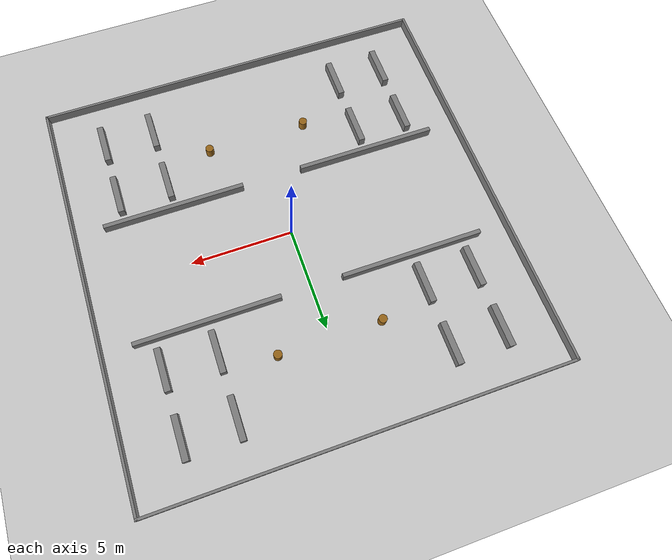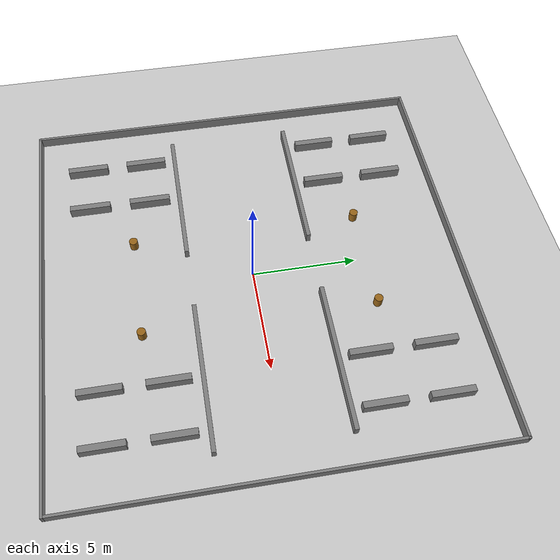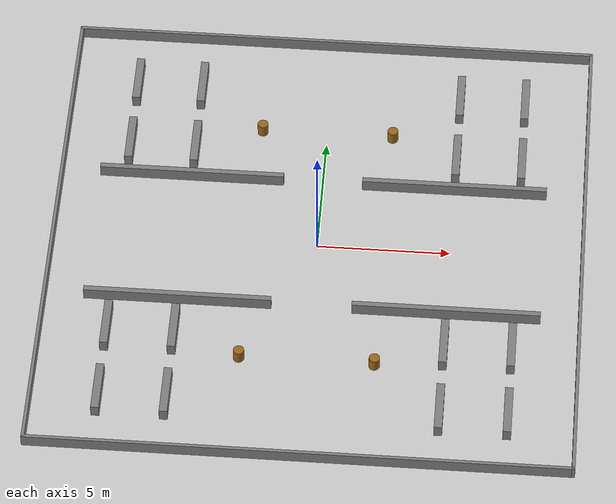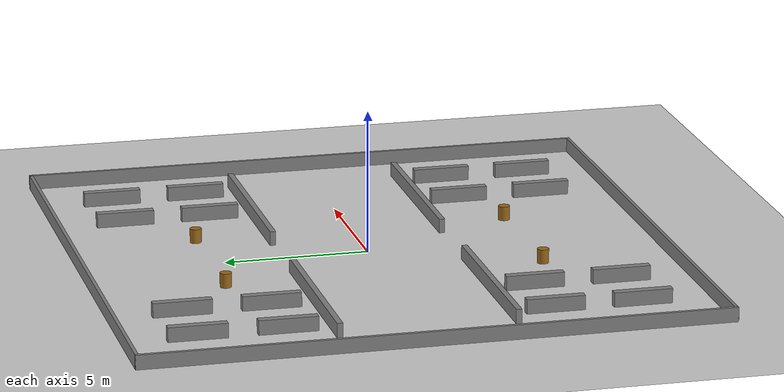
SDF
<sdf version="1.9">
 <world name="ahe_inspection_mvp">
  <physics name="1ms" type="ignored">
   <max_step_size>0.001</max_step_size>
   <real_time_factor>1.0</real_time_factor>
  </physics>
  <plugin filename="gz-sim-physics-system" name="gz::sim::systems::Physics"/>
  <plugin filename="gz-sim-user-commands-system" name="gz::sim::systems::UserCommands"/>
  <plugin filename="gz-sim-scene-broadcaster-system" name="gz::sim::systems::SceneBroadcaster"/>
  <plugin filename="gz-sim-sensors-system" name="gz::sim::systems::Sensors">
   <render_engine>ogre</render_engine>
  </plugin>
  <plugin filename="gz-sim-imu-system" name="gz::sim::systems::Imu"/>
  <light type="directional" name="sun">
   <pose>0 0 10 0 0 0</pose>
   <diffuse>0.8 0.8 0.8 1</diffuse>
   <specular>0.2 0.2 0.2 1</specular>
   <direction>-0.5 0.1 -0.9</direction>
  </light>
  <model name="ground_plane">
   <static>true</static>
   <link name="link">
    <collision name="collision">
     <geometry><plane><normal>0 0 1</normal><size>100 100</size></plane></geometry>
    </collision>
    <visual name="visual">
     <geometry><plane><normal>0 0 1</normal><size>100 100</size></plane></geometry>
     <material><ambient>0.8 0.8 0.8 1</ambient><diffuse>0.8 0.8 0.8 1</diffuse></material>
    </visual>
   </link>
  </model>
  <model name="obstacle_000">
   <static>true</static>
   <pose>0 9.96 0.25 0 0 0</pose>
   <link name="link">
    <collision name="col"><geometry><box><size>20.04 0.12 0.5</size></box></geometry></collision>
    <visual name="vis">
     <geometry><box><size>20.04 0.12 0.5</size></box></geometry>
     <material><ambient>0.5 0.5 0.5 1</ambient><diffuse>0.5 0.5 0.5 1</diffuse></material>
    </visual>
   </link>
  </model>
  <model name="obstacle_001">
   <static>true</static>
   <pose>0 -9.96 0.25 0 0 0</pose>
   <link name="link">
    <collision name="col"><geometry><box><size>20.04 0.12 0.5</size></box></geometry></collision>
    <visual name="vis">
     <geometry><box><size>20.04 0.12 0.5</size></box></geometry>
     <material><ambient>0.5 0.5 0.5 1</ambient><diffuse>0.5 0.5 0.5 1</diffuse></material>
    </visual>
   </link>
  </model>
  <model name="obstacle_002">
   <static>true</static>
   <pose>9.96 0 0.25 0 0 0</pose>
   <link name="link">
    <collision name="col"><geometry><box><size>0.12 20.04 0.5</size></box></geometry></collision>
    <visual name="vis">
     <geometry><box><size>0.12 20.04 0.5</size></box></geometry>
     <material><ambient>0.5 0.5 0.5 1</ambient><diffuse>0.5 0.5 0.5 1</diffuse></material>
    </visual>
   </link>
  </model>
  <model name="obstacle_003">
   <static>true</static>
   <pose>-9.96 0 0.25 0 0 0</pose>
   <link name="link">
    <collision name="col"><geometry><box><size>0.12 20.04 0.5</size></box></geometry></collision>
    <visual name="vis">
     <geometry><box><size>0.12 20.04 0.5</size></box></geometry>
     <material><ambient>0.5 0.5 0.5 1</ambient><diffuse>0.5 0.5 0.5 1</diffuse></material>
    </visual>
   </link>
  </model>
  <model name="obstacle_004">
   <static>true</static>
   <pose>-7.5 -7.5 0.25 0 0 0</pose>
   <link name="link">
    <collision name="col"><geometry><box><size>0.3 2.0 0.5</size></box></geometry></collision>
    <visual name="vis">
     <geometry><box><size>0.3 2.0 0.5</size></box></geometry>
     <material><ambient>0.5 0.5 0.5 1</ambient><diffuse>0.5 0.5 0.5 1</diffuse></material>
    </visual>
   </link>
  </model>
  <model name="obstacle_005">
   <static>true</static>
   <pose>-7.5 -4.5 0.25 0 0 0</pose>
   <link name="link">
    <collision name="col"><geometry><box><size>0.3 2.0 0.5</size></box></geometry></collision>
    <visual name="vis">
     <geometry><box><size>0.3 2.0 0.5</size></box></geometry>
     <material><ambient>0.5 0.5 0.5 1</ambient><diffuse>0.5 0.5 0.5 1</diffuse></material>
    </visual>
   </link>
  </model>
  <model name="obstacle_006">
   <static>true</static>
   <pose>-7.5 4.5 0.25 0 0 0</pose>
   <link name="link">
    <collision name="col"><geometry><box><size>0.3 2.0 0.5</size></box></geometry></collision>
    <visual name="vis">
     <geometry><box><size>0.3 2.0 0.5</size></box></geometry>
     <material><ambient>0.5 0.5 0.5 1</ambient><diffuse>0.5 0.5 0.5 1</diffuse></material>
    </visual>
   </link>
  </model>
  <model name="obstacle_007">
   <static>true</static>
   <pose>-7.5 7.5 0.25 0 0 0</pose>
   <link name="link">
    <collision name="col"><geometry><box><size>0.3 2.0 0.5</size></box></geometry></collision>
    <visual name="vis">
     <geometry><box><size>0.3 2.0 0.5</size></box></geometry>
     <material><ambient>0.5 0.5 0.5 1</ambient><diffuse>0.5 0.5 0.5 1</diffuse></material>
    </visual>
   </link>
  </model>
  <model name="obstacle_008">
   <static>true</static>
   <pose>-5.0 -7.5 0.25 0 0 0</pose>
   <link name="link">
    <collision name="col"><geometry><box><size>0.3 2.0 0.5</size></box></geometry></collision>
    <visual name="vis">
     <geometry><box><size>0.3 2.0 0.5</size></box></geometry>
     <material><ambient>0.5 0.5 0.5 1</ambient><diffuse>0.5 0.5 0.5 1</diffuse></material>
    </visual>
   </link>
  </model>
  <model name="obstacle_009">
   <static>true</static>
   <pose>-5.0 -4.5 0.25 0 0 0</pose>
   <link name="link">
    <collision name="col"><geometry><box><size>0.3 2.0 0.5</size></box></geometry></collision>
    <visual name="vis">
     <geometry><box><size>0.3 2.0 0.5</size></box></geometry>
     <material><ambient>0.5 0.5 0.5 1</ambient><diffuse>0.5 0.5 0.5 1</diffuse></material>
    </visual>
   </link>
  </model>
  <model name="obstacle_010">
   <static>true</static>
   <pose>-5.0 4.5 0.25 0 0 0</pose>
   <link name="link">
    <collision name="col"><geometry><box><size>0.3 2.0 0.5</size></box></geometry></collision>
    <visual name="vis">
     <geometry><box><size>0.3 2.0 0.5</size></box></geometry>
     <material><ambient>0.5 0.5 0.5 1</ambient><diffuse>0.5 0.5 0.5 1</diffuse></material>
    </visual>
   </link>
  </model>
  <model name="obstacle_011">
   <static>true</static>
   <pose>-5.0 7.5 0.25 0 0 0</pose>
   <link name="link">
    <collision name="col"><geometry><box><size>0.3 2.0 0.5</size></box></geometry></collision>
    <visual name="vis">
     <geometry><box><size>0.3 2.0 0.5</size></box></geometry>
     <material><ambient>0.5 0.5 0.5 1</ambient><diffuse>0.5 0.5 0.5 1</diffuse></material>
    </visual>
   </link>
  </model>
  <model name="obstacle_012">
   <static>true</static>
   <pose>5.0 -7.5 0.25 0 0 0</pose>
   <link name="link">
    <collision name="col"><geometry><box><size>0.3 2.0 0.5</size></box></geometry></collision>
    <visual name="vis">
     <geometry><box><size>0.3 2.0 0.5</size></box></geometry>
     <material><ambient>0.5 0.5 0.5 1</ambient><diffuse>0.5 0.5 0.5 1</diffuse></material>
    </visual>
   </link>
  </model>
  <model name="obstacle_013">
   <static>true</static>
   <pose>5.0 -4.5 0.25 0 0 0</pose>
   <link name="link">
    <collision name="col"><geometry><box><size>0.3 2.0 0.5</size></box></geometry></collision>
    <visual name="vis">
     <geometry><box><size>0.3 2.0 0.5</size></box></geometry>
     <material><ambient>0.5 0.5 0.5 1</ambient><diffuse>0.5 0.5 0.5 1</diffuse></material>
    </visual>
   </link>
  </model>
  <model name="obstacle_014">
   <static>true</static>
   <pose>5.0 4.5 0.25 0 0 0</pose>
   <link name="link">
    <collision name="col"><geometry><box><size>0.3 2.0 0.5</size></box></geometry></collision>
    <visual name="vis">
     <geometry><box><size>0.3 2.0 0.5</size></box></geometry>
     <material><ambient>0.5 0.5 0.5 1</ambient><diffuse>0.5 0.5 0.5 1</diffuse></material>
    </visual>
   </link>
  </model>
  <model name="obstacle_015">
   <static>true</static>
   <pose>5.0 7.5 0.25 0 0 0</pose>
   <link name="link">
    <collision name="col"><geometry><box><size>0.3 2.0 0.5</size></box></geometry></collision>
    <visual name="vis">
     <geometry><box><size>0.3 2.0 0.5</size></box></geometry>
     <material><ambient>0.5 0.5 0.5 1</ambient><diffuse>0.5 0.5 0.5 1</diffuse></material>
    </visual>
   </link>
  </model>
  <model name="obstacle_016">
   <static>true</static>
   <pose>7.5 -7.5 0.25 0 0 0</pose>
   <link name="link">
    <collision name="col"><geometry><box><size>0.3 2.0 0.5</size></box></geometry></collision>
    <visual name="vis">
     <geometry><box><size>0.3 2.0 0.5</size></box></geometry>
     <material><ambient>0.5 0.5 0.5 1</ambient><diffuse>0.5 0.5 0.5 1</diffuse></material>
    </visual>
   </link>
  </model>
  <model name="obstacle_017">
   <static>true</static>
   <pose>7.5 -4.5 0.25 0 0 0</pose>
   <link name="link">
    <collision name="col"><geometry><box><size>0.3 2.0 0.5</size></box></geometry></collision>
    <visual name="vis">
     <geometry><box><size>0.3 2.0 0.5</size></box></geometry>
     <material><ambient>0.5 0.5 0.5 1</ambient><diffuse>0.5 0.5 0.5 1</diffuse></material>
    </visual>
   </link>
  </model>
  <model name="obstacle_018">
   <static>true</static>
   <pose>7.5 4.5 0.25 0 0 0</pose>
   <link name="link">
    <collision name="col"><geometry><box><size>0.3 2.0 0.5</size></box></geometry></collision>
    <visual name="vis">
     <geometry><box><size>0.3 2.0 0.5</size></box></geometry>
     <material><ambient>0.5 0.5 0.5 1</ambient><diffuse>0.5 0.5 0.5 1</diffuse></material>
    </visual>
   </link>
  </model>
  <model name="obstacle_019">
   <static>true</static>
   <pose>7.5 7.5 0.25 0 0 0</pose>
   <link name="link">
    <collision name="col"><geometry><box><size>0.3 2.0 0.5</size></box></geometry></collision>
    <visual name="vis">
     <geometry><box><size>0.3 2.0 0.5</size></box></geometry>
     <material><ambient>0.5 0.5 0.5 1</ambient><diffuse>0.5 0.5 0.5 1</diffuse></material>
    </visual>
   </link>
  </model>
  <model name="obstacle_020">
   <static>true</static>
   <pose>-5.0 3.0 0.25 0 0 0</pose>
   <link name="link">
    <collision name="col"><geometry><box><size>7.0 0.2 0.5</size></box></geometry></collision>
    <visual name="vis">
     <geometry><box><size>7.0 0.2 0.5</size></box></geometry>
     <material><ambient>0.5 0.5 0.5 1</ambient><diffuse>0.5 0.5 0.5 1</diffuse></material>
    </visual>
   </link>
  </model>
  <model name="obstacle_021">
   <static>true</static>
   <pose>5.0 3.0 0.25 0 0 0</pose>
   <link name="link">
    <collision name="col"><geometry><box><size>7.0 0.2 0.5</size></box></geometry></collision>
    <visual name="vis">
     <geometry><box><size>7.0 0.2 0.5</size></box></geometry>
     <material><ambient>0.5 0.5 0.5 1</ambient><diffuse>0.5 0.5 0.5 1</diffuse></material>
    </visual>
   </link>
  </model>
  <model name="obstacle_022">
   <static>true</static>
   <pose>-5.0 -3.0 0.25 0 0 0</pose>
   <link name="link">
    <collision name="col"><geometry><box><size>7.0 0.2 0.5</size></box></geometry></collision>
    <visual name="vis">
     <geometry><box><size>7.0 0.2 0.5</size></box></geometry>
     <material><ambient>0.5 0.5 0.5 1</ambient><diffuse>0.5 0.5 0.5 1</diffuse></material>
    </visual>
   </link>
  </model>
  <model name="obstacle_023">
   <static>true</static>
   <pose>5.0 -3.0 0.25 0 0 0</pose>
   <link name="link">
    <collision name="col"><geometry><box><size>7.0 0.2 0.5</size></box></geometry></collision>
    <visual name="vis">
     <geometry><box><size>7.0 0.2 0.5</size></box></geometry>
     <material><ambient>0.5 0.5 0.5 1</ambient><diffuse>0.5 0.5 0.5 1</diffuse></material>
    </visual>
   </link>
  </model>
  <model name="obstacle_024">
   <static>true</static>
   <pose>-2.5 5.5 0.25 0 0 0</pose>
   <link name="link">
    <collision name="col">
     <geometry><cylinder><radius>0.2</radius><length>0.5</length></cylinder></geometry>
    </collision>
    <visual name="vis">
     <geometry><cylinder><radius>0.2</radius><length>0.5</length></cylinder></geometry>
     <material><ambient>0.6 0.4 0.1 1</ambient><diffuse>0.6 0.4 0.1 1</diffuse></material>
    </visual>
   </link>
  </model>
  <model name="obstacle_025">
   <static>true</static>
   <pose>2.5 5.5 0.25 0 0 0</pose>
   <link name="link">
    <collision name="col">
     <geometry><cylinder><radius>0.2</radius><length>0.5</length></cylinder></geometry>
    </collision>
    <visual name="vis">
     <geometry><cylinder><radius>0.2</radius><length>0.5</length></cylinder></geometry>
     <material><ambient>0.6 0.4 0.1 1</ambient><diffuse>0.6 0.4 0.1 1</diffuse></material>
    </visual>
   </link>
  </model>
  <model name="obstacle_026">
   <static>true</static>
   <pose>-2.5 -5.5 0.25 0 0 0</pose>
   <link name="link">
    <collision name="col">
     <geometry><cylinder><radius>0.2</radius><length>0.5</length></cylinder></geometry>
    </collision>
    <visual name="vis">
     <geometry><cylinder><radius>0.2</radius><length>0.5</length></cylinder></geometry>
     <material><ambient>0.6 0.4 0.1 1</ambient><diffuse>0.6 0.4 0.1 1</diffuse></material>
    </visual>
   </link>
  </model>
  <model name="obstacle_027">
   <static>true</static>
   <pose>2.5 -5.5 0.25 0 0 0</pose>
   <link name="link">
    <collision name="col">
     <geometry><cylinder><radius>0.2</radius><length>0.5</length></cylinder></geometry>
    </collision>
    <visual name="vis">
     <geometry><cylinder><radius>0.2</radius><length>0.5</length></cylinder></geometry>
     <material><ambient>0.6 0.4 0.1 1</ambient><diffuse>0.6 0.4 0.1 1</diffuse></material>
    </visual>
   </link>
  </model>
 </world>
</sdf>
